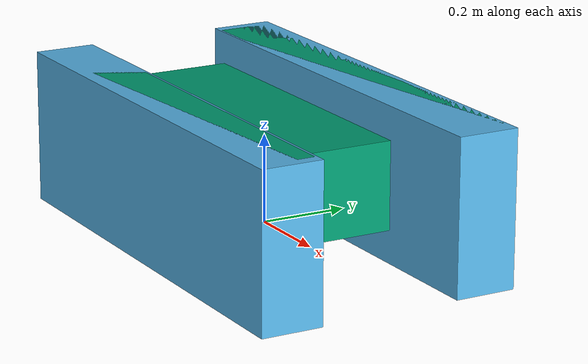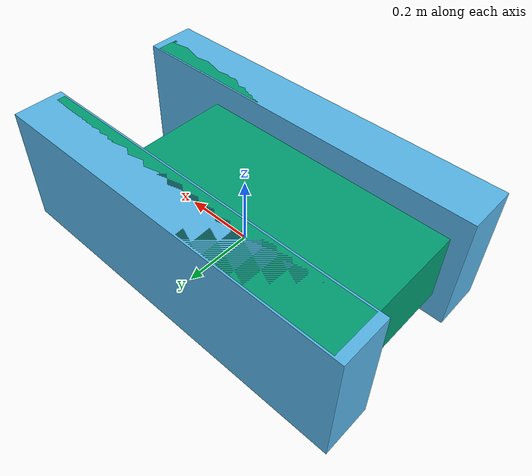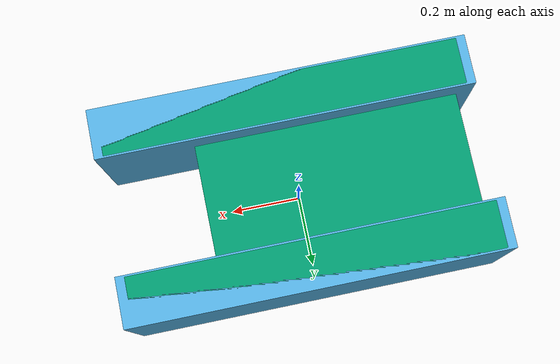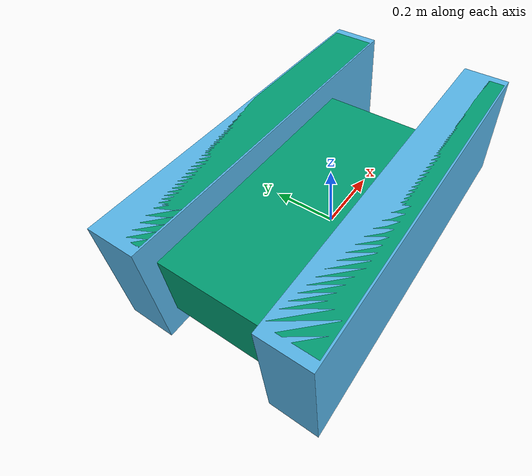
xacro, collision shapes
<robot xmlns:xacro="http://www.ros.org/wiki/xacro">

  <xacro:include filename="$(find taurob_mi_description)/urdf/inertia_tensors.urdf.xacro"/>
  <xacro:include filename="$(find taurob_mi_description)/urdf/taurob_mi_chassis.gazebo.xacro" />

  <xacro:property name="base_size_x" value="${0.365*2}"/>
  <xacro:property name="base_size_y" value="0.24"/>
  <xacro:property name="base_size_z" value="0.312 "/>
  <xacro:property name="base_offset_x" value="-0.122"/>
  <xacro:property name="base_offset_z" value="-0.05"/>

    <link name="base_link"/>

    <joint name="chassis_joint" type="fixed">
      <origin xyz="${-base_offset_x} 0 0.18" rpy="0 0 0"/>
      <parent link="base_link"/>
      <child link="chassis_link"/>
    </joint>

    <link name="flipper_link">
      <origin xyz="0 0 0" rpy="0 0 0"/>
      <collision>
        <origin xyz="0.5 -0.23 ${base_offset_z}" rpy="0 0 0"/>
        <geometry>
          <box size="1.05 0.14 0.35"/>
        </geometry>
      </collision>
      <collision>
        <origin xyz="0.5 0.23 ${base_offset_z}" rpy="0 0 0"/>
        <geometry>
          <box size="1.05 0.14 0.35"/>
        </geometry>
      </collision>
    </link>

    <joint name="flipper_front" type="revolute">
      <origin xyz="${base_offset_x-0.5} 0 0" rpy="0 0 0"/>
      <axis xyz="0 -1 0"/>
      <limit lower="${-30 * M_PI / 180}" upper="${50 * M_PI / 180}" effort="204" velocity="${1.0 * 110 * M_PI / 180}"/>
      <safety_controller soft_lower_limit="${-25 * M_PI / 180}" soft_upper_limit="${45 * M_PI / 180}" k_position="${100}" k_velocity="${2}"/>
      <parent link="chassis_link"/>
      <child link="flipper_link"/>
    </joint>

    <link name="chassis_link">
      <xacro:inertial_cuboid_with_pose mass="20" x_length="${base_size_x}" y_length="${base_size_y}" z_length="${base_size_z}">
        <origin xyz="0.0 0.0 ${0.312*0.5}" rpy="0 0 0"/>
      </xacro:inertial_cuboid_with_pose>
      <visual>
        <origin xyz="0.0 0.0 0.0" rpy="0 0 0"/>
        <geometry>
          <mesh filename="package://taurob_mi_description/meshes/taurob/tracker_chassis.dae"/>
        </geometry>
      </visual>
      <collision>
        <origin xyz="${base_offset_x-0.11} 0.0 ${base_offset_z}" rpy="0 0 0"/>
        <geometry>
          <box size="0.74 0.5 0.2"/>
        </geometry>
      </collision>
      <collision>
        <origin xyz="${base_offset_x} -0.23 ${base_offset_z}" rpy="0 0 0"/>
        <geometry>
          <box size="1.0 0.13 0.35"/>
        </geometry>
      </collision>
      <collision>
        <origin xyz="${base_offset_x} 0.23 ${base_offset_z}" rpy="0 0 0"/>
        <geometry>
          <box size="1.0 0.13 0.35"/>
        </geometry>
      </collision>
    </link>

</robot>

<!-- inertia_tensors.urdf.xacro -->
<robot xmlns:xacro="http://www.ros.org/wiki/xacro" name="taurob_mi">

  <xacro:macro name="inertial_cuboid" params="mass x_length y_length z_length">
    <inertial>
      <mass value="${mass}" />
      <origin xyz="0 0 0" />
      <inertia ixx="${(1/12) * mass * (y_length*y_length + z_length*z_length)}" ixy="0.0" ixz="0.0"
               iyy="${(1/12) * mass * (x_length*x_length + z_length*z_length)}" iyz="0.0"
               izz="${(1/12) * mass * (x_length*x_length + y_length*y_length)}" />
    </inertial>
  </xacro:macro>

  <xacro:macro name="inertial_cuboid_with_pose" params="mass x_length y_length z_length *origin">
    <inertial>
      <xacro:insert_block name="origin"/>
      <mass value="${mass}" />
      <inertia ixx="${(1/12) * mass * (y_length*y_length + z_length*z_length)}" ixy="0.0" ixz="0.0"
               iyy="${(1/12) * mass * (x_length*x_length + z_length*z_length)}" iyz="0.0"
               izz="${(1/12) * mass * (x_length*x_length + y_length*y_length)}" />
    </inertial>
  </xacro:macro>

  <xacro:macro name="inertial_sphere" params="mass diameter">
    <inertial>
      <mass value="${mass}" />
      <origin xyz="0 0 0" />
      <inertia ixx="${(2/5) * mass * ( (diameter*0.5) * (diameter*0.5) )}" ixy="0.0" ixz="0.0"
               iyy="${(2/5) * mass * ( (diameter*0.5) * (diameter*0.5) )}" iyz="0.0"
               izz="${(2/5) * mass * ( (diameter*0.5) * (diameter*0.5) )}" />
    </inertial>
  </xacro:macro>

  <xacro:macro name="inertial_sphere_with_pose" params="mass diameter *origin">
    <inertial>
      <xacro:insert_block name="origin"/>
      <mass value="${mass}" />
      <inertia ixx="${(2/5) * mass * ( (diameter*0.5) * (diameter*0.5) )}" ixy="0.0" ixz="0.0"
               iyy="${(2/5) * mass * ( (diameter*0.5) * (diameter*0.5) )}" iyz="0.0"
               izz="${(2/5) * mass * ( (diameter*0.5) * (diameter*0.5) )}" />
    </inertial>
  </xacro:macro>

</robot>
